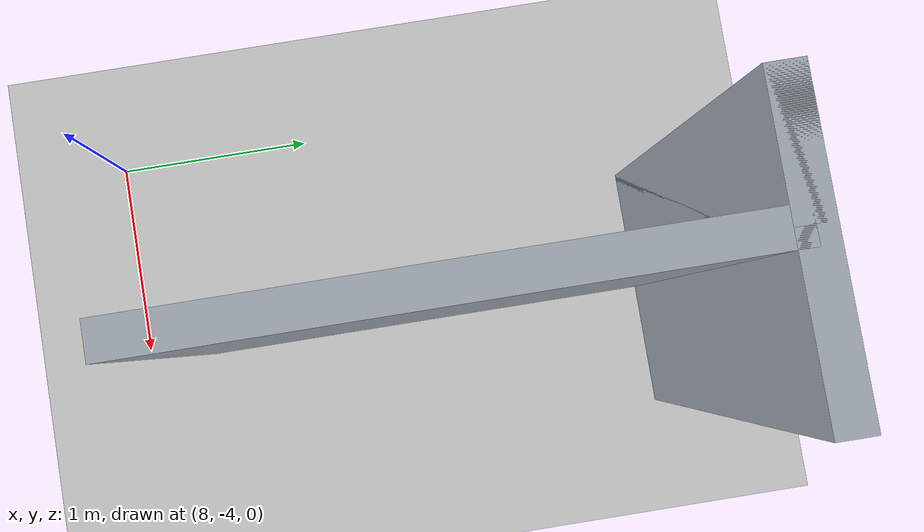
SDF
<sdf version="1.9">
 <world name="default">
  <model name="ground_plane">
   <static>true</static>
   <pose>4.85 0 -0.05 0 0 0</pose>
   <link name="body">
    <collision name="collision"><geometry><box><size>13.7 12 0.1</size></box></geometry></collision>
    <visual name="visual">
     <geometry><box><size>13.7 12 0.1</size></box></geometry>
     <material><ambient>0.8 0.8 0.8 1</ambient><diffuse>0.8 0.8 0.8 1</diffuse></material>
    </visual>
   </link>
  </model>
  <model name="room_-1_2_1">
   <static>true</static>
   <pose>9.0 -2.45 1.1 0 0 0</pose>
   <link name="body">
    <collision name="collision"><geometry><box><size>0.15 2.4 2.2</size></box></geometry></collision>
    <visual name="visual">
     <geometry><box><size>0.15 2.4 2.2</size></box></geometry>
     <material><ambient>0.65 0.68 0.72 1</ambient><diffuse>0.65 0.68 0.72 1</diffuse></material>
    </visual>
   </link>
  </model>
  <model name="jamb_-1_2_1">
   <static>true</static>
   <pose>8.725 -1.25 1.1 0 0 0</pose>
   <link name="body">
    <collision name="collision"><geometry><box><size>0.55 0.15 2.2</size></box></geometry></collision>
    <visual name="visual">
     <geometry><box><size>0.55 0.15 2.2</size></box></geometry>
     <material><ambient>0.65 0.68 0.72 1</ambient><diffuse>0.65 0.68 0.72 1</diffuse></material>
    </visual>
   </link>
  </model>
  <model name="hall_end_-1">
   <static>true</static>
   <pose>9.075 -1.25 1.1 0 0 0</pose>
   <link name="body">
    <collision name="collision"><geometry><box><size>1.25 0.15 2.2</size></box></geometry></collision>
    <visual name="visual">
     <geometry><box><size>1.25 0.15 2.2</size></box></geometry>
     <material><ambient>0.65 0.68 0.72 1</ambient><diffuse>0.65 0.68 0.72 1</diffuse></material>
    </visual>
   </link>
  </model>
 </world>
</sdf>
